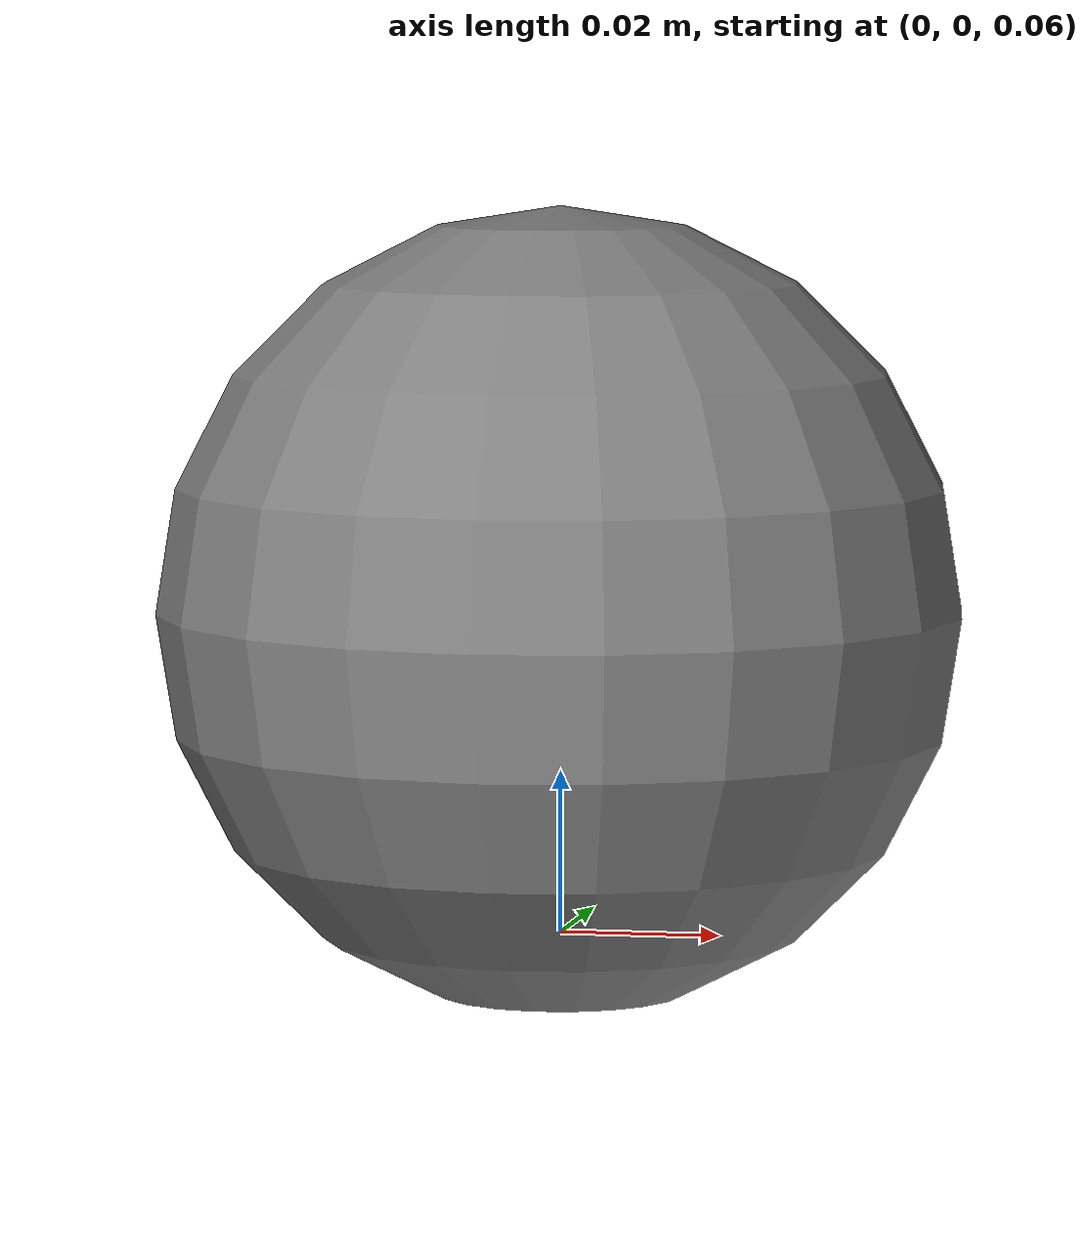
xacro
<?xml version="1.0"?>
<robot xmlns:xacro="http://www.ros.org/wiki/xacro">
    <xacro:include filename="common_properties.xacro" />

    <xacro:property name="wheel_radius" value="0.1" />

     <link name="base_footprint" />

     <link name="base_link">
        <visual>
            <geometry>
                <sphere radius="${wheel_radius / 2.0}" />
            </geometry>
            <origin xyz="0 0 0" rpy="0 0 0" />
            <material name="grey" />
        </visual>
        <collision>
             <geometry>
                <sphere radius="${wheel_radius / 2.0}" />
            </geometry>
            <origin xyz="0 0 0" rpy="0 0 0" />
        </collision>
        <xacro:sphere_inertia m="0.5" r="${wheel_radius / 2.0}"
                              o_xyz="0 0 0" o_rpy="0 0 0" />
    </link>

    <joint name="base_joint" type="fixed">
        <parent link="base_footprint" />
        <child link="base_link" />
        <origin xyz="0 0 ${wheel_radius}" rpy="0 0 0"/>
    </joint>

    <gazebo>
        <plugin
            filename="gz-sim-diff-drive-system"
            name="gz::sim::systems::DiffDrive">
            <left_joint>base_joint</left_joint>
            <right_joint>base_joint</right_joint>
            <wheel_separation>0.45</wheel_separation>
            <wheel_radius>0.1</wheel_radius>
            <frame_id>odom</frame_id>
            <child_frame_id>base_footprint</child_frame_id>
        </plugin>
    </gazebo>

    <gazebo>
        <plugin
            filename="gz-sim-joint-state-publisher-system"
            name="gz::sim::systems::JointStatePublisher">
            <joint_name>base_left_wheel_joint</joint_name>
            <joint_name>base_right_wheel_joint</joint_name>
        </plugin>
    </gazebo>
</robot>

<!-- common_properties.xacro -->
<robot xmlns:xacro="http://www.ros.org/wiki/xacro">

    <material name="blue">
        <color rgba="0 0 0.5 1" />
    </material>

    <material name="grey">
        <color rgba="0.5 0.5 0.5 1" />
    </material>

     <material name="orange">
        <color rgba="0.8 0.3 0 1" />
    </material>

    <xacro:macro name="box_inertia" params="m x y z o_xyz o_rpy">
        <inertial>
            <mass value="${m}" />
            <origin xyz="${o_xyz}" rpy="${o_rpy}" />
            <inertia ixx="${(m/12) * (y*y + z*z)}" ixy="0" ixz="0"
                     iyy="${(m/12) * (x*x + z*z)}" iyz="0"
                     izz="${(m/12) * (x*x + y*y)}" />
        </inertial>
    </xacro:macro>

    <xacro:macro name="cylinder_inertia" params="m r l o_xyz o_rpy">
        <inertial>
            <mass value="${m}" />
            <origin xyz="${o_xyz}" rpy="${o_rpy}" />
            <inertia ixx="${(m/12) * (3*r*r + l*l)}" ixy="0" ixz="0"
                     iyy="${(m/12) * (3*r*r + l*l)}" iyz="0"
                     izz="${(m/2) * (r*r)}" />
        </inertial>
    </xacro:macro>

    <xacro:macro name="sphere_inertia" params="m r o_xyz o_rpy">
        <inertial>
            <mass value="${m}" />
            <origin xyz="${o_xyz}" rpy="${o_rpy}" />
            <inertia ixx="${(2/5) * m * r * r}" ixy="0" ixz="0"
                     iyy="${(2/5) * m * r * r}" iyz="0"
                     izz="${(2/5) * m * r * r}" />
        </inertial>
    </xacro:macro>

</robot>
